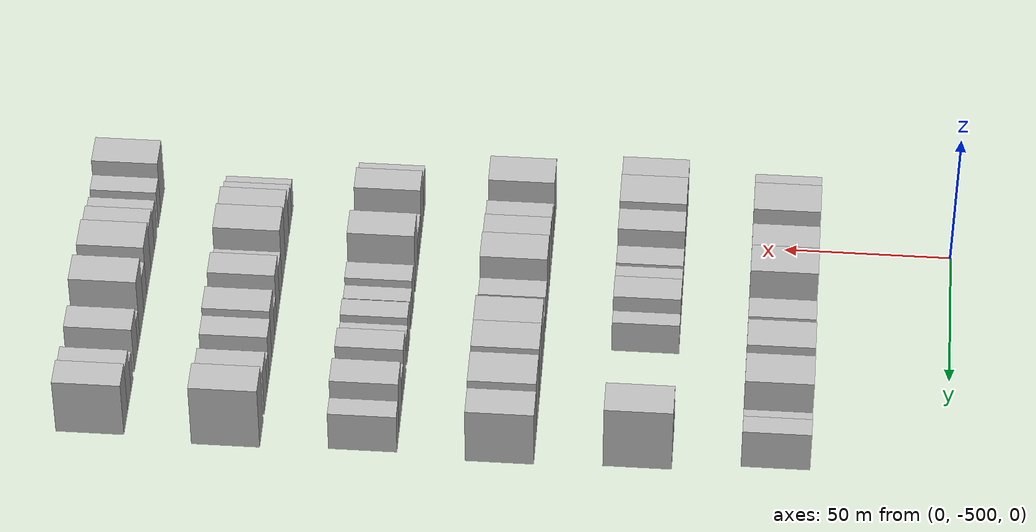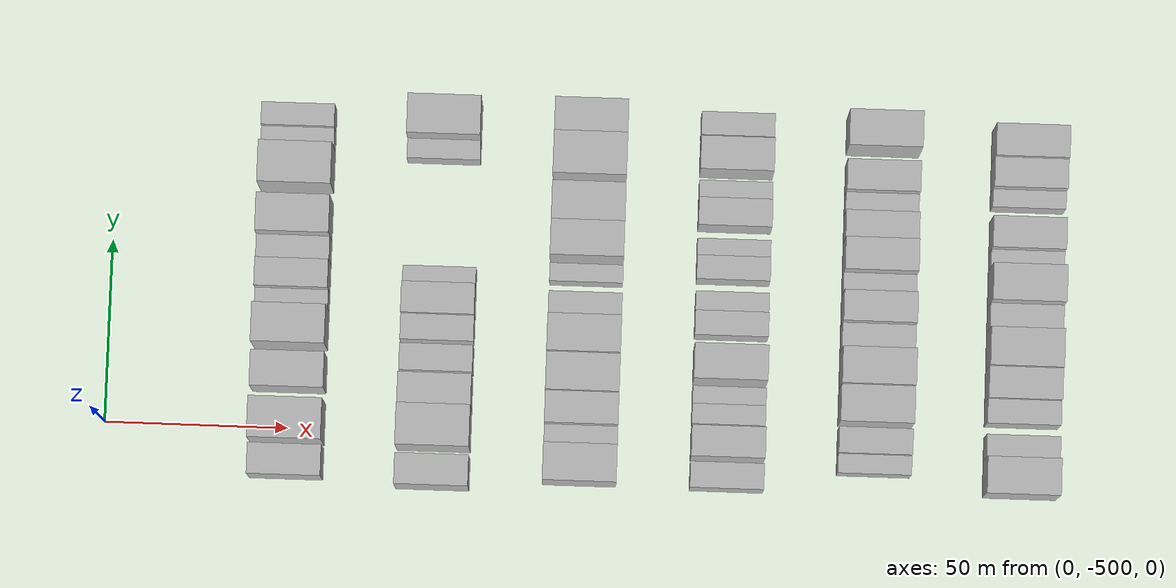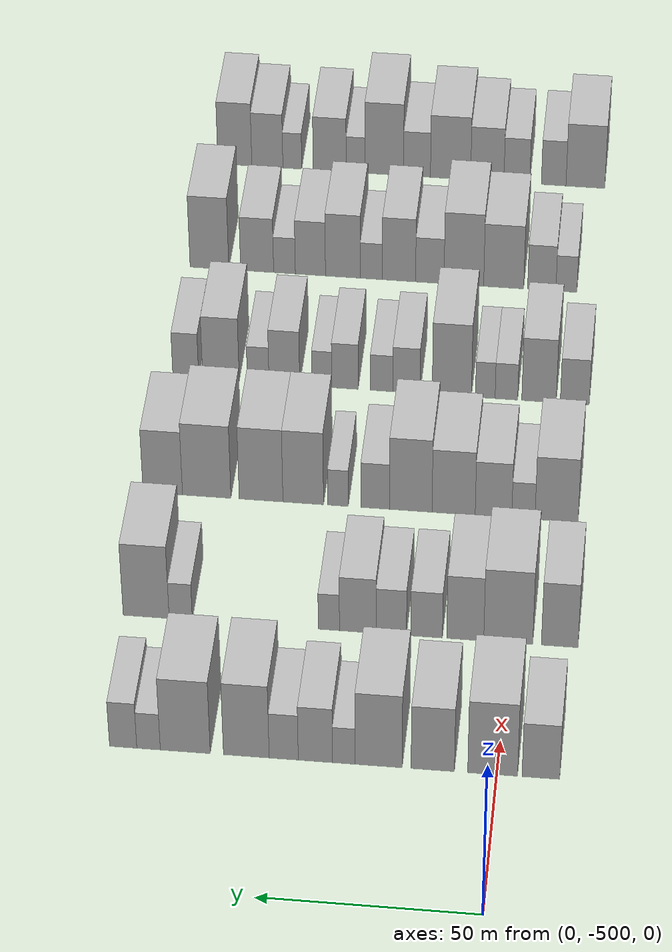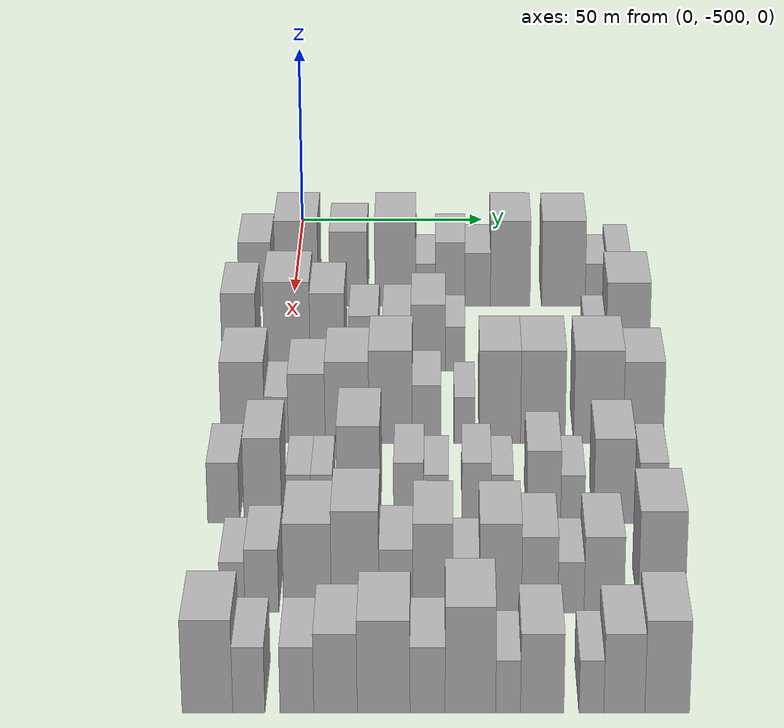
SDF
<sdf version="1.6">
 <world name="default">
  <model name="building_13">
   <static>1</static>
   <pose>50.0000 -509.7399 0 0.000000 0.000000 0.000000</pose>
   <link name="link">
    <pose>0 0 9.00 0 0 0</pose>
    <collision name="collision"><geometry><box><size>20.0000 8.4533 18.0000</size></box></geometry></collision>
    <visual name="visual">
     <cast_shadows>0</cast_shadows>
     <geometry><box><size>20.0000 8.4533 18.0000</size></box></geometry>
     <material>
      <script>
       <uri>model://HANNAS_wall/materials/scripts</uri>
       <uri>model://HANNAS_wall/materials/textures</uri>
       <name>vrc/HANNAS_wall</name>
      </script>
     </material>
    </visual>
   </link>
  </model>
  <model name="building_14">
   <static>1</static>
   <pose>50.0000 -498.9163 0 0.000000 0.000000 0.000000</pose>
   <link name="link">
    <pose>0 0 12.00 0 0 0</pose>
    <collision name="collision"><geometry><box><size>20.0000 11.1939 24.0000</size></box></geometry></collision>
    <visual name="visual">
     <cast_shadows>0</cast_shadows>
     <geometry><box><size>20.0000 11.1939 24.0000</size></box></geometry>
     <material>
      <script>
       <uri>model://HANNAS_wall/materials/scripts</uri>
       <uri>model://HANNAS_wall/materials/textures</uri>
       <name>vrc/HANNAS_wall</name>
      </script>
     </material>
    </visual>
   </link>
  </model>
  <model name="building_15">
   <static>1</static>
   <pose>50.0000 -485.4462 0 0.000000 0.000000 0.000000</pose>
   <link name="link">
    <pose>0 0 10.50 0 0 0</pose>
    <collision name="collision"><geometry><box><size>20.0000 9.7464 21.0000</size></box></geometry></collision>
    <visual name="visual">
     <cast_shadows>0</cast_shadows>
     <geometry><box><size>20.0000 9.7464 21.0000</size></box></geometry>
     <material>
      <script>
       <uri>model://HANNAS_wall/materials/scripts</uri>
       <uri>model://HANNAS_wall/materials/textures</uri>
       <name>vrc/HANNAS_wall</name>
      </script>
     </material>
    </visual>
   </link>
  </model>
  <model name="building_16">
   <static>1</static>
   <pose>50.0000 -473.2641 0 0.000000 0.000000 0.000000</pose>
   <link name="link">
    <pose>0 0 12.00 0 0 0</pose>
    <collision name="collision"><geometry><box><size>20.0000 10.6177 24.0000</size></box></geometry></collision>
    <visual name="visual">
     <cast_shadows>0</cast_shadows>
     <geometry><box><size>20.0000 10.6177 24.0000</size></box></geometry>
     <material>
      <script>
       <uri>model://HANNAS_wall/materials/scripts</uri>
       <uri>model://HANNAS_wall/materials/textures</uri>
       <name>vrc/HANNAS_wall</name>
      </script>
     </material>
    </visual>
   </link>
  </model>
  <model name="building_17">
   <static>1</static>
   <pose>50.0000 -465.4085 0 0.000000 0.000000 0.000000</pose>
   <link name="link">
    <pose>0 0 6.00 0 0 0</pose>
    <collision name="collision"><geometry><box><size>20.0000 5.0936 12.0000</size></box></geometry></collision>
    <visual name="visual">
     <cast_shadows>0</cast_shadows>
     <geometry><box><size>20.0000 5.0936 12.0000</size></box></geometry>
     <material>
      <script>
       <uri>model://HANNAS_wall/materials/scripts</uri>
       <uri>model://HANNAS_wall/materials/textures</uri>
       <name>vrc/HANNAS_wall</name>
      </script>
     </material>
    </visual>
   </link>
  </model>
  <model name="building_18">
   <static>1</static>
   <pose>50.0000 -458.9853 0 0.000000 0.000000 0.000000</pose>
   <link name="link">
    <pose>0 0 9.00 0 0 0</pose>
    <collision name="collision"><geometry><box><size>20.0000 7.7528 18.0000</size></box></geometry></collision>
    <visual name="visual">
     <cast_shadows>0</cast_shadows>
     <geometry><box><size>20.0000 7.7528 18.0000</size></box></geometry>
     <material>
      <script>
       <uri>model://HANNAS_wall/materials/scripts</uri>
       <uri>model://HANNAS_wall/materials/textures</uri>
       <name>vrc/HANNAS_wall</name>
      </script>
     </material>
    </visual>
   </link>
  </model>
  <model name="building_19">
   <static>1</static>
   <pose>50.0000 -451.8215 0 0.000000 0.000000 0.000000</pose>
   <link name="link">
    <pose>0 0 7.50 0 0 0</pose>
    <collision name="collision"><geometry><box><size>20.0000 6.5747 15.0000</size></box></geometry></collision>
    <visual name="visual">
     <cast_shadows>0</cast_shadows>
     <geometry><box><size>20.0000 6.5747 15.0000</size></box></geometry>
     <material>
      <script>
       <uri>model://HANNAS_wall/materials/scripts</uri>
       <uri>model://HANNAS_wall/materials/textures</uri>
       <name>vrc/HANNAS_wall</name>
      </script>
     </material>
    </visual>
   </link>
  </model>
  <model name="building_20">
   <static>1</static>
   <pose>50.0000 -443.3576 0 0.000000 0.000000 0.000000</pose>
   <link name="link">
    <pose>0 0 12.00 0 0 0</pose>
    <collision name="collision"><geometry><box><size>20.0000 10.3531 24.0000</size></box></geometry></collision>
    <visual name="visual">
     <cast_shadows>0</cast_shadows>
     <geometry><box><size>20.0000 10.3531 24.0000</size></box></geometry>
     <material>
      <script>
       <uri>model://HANNAS_wall/materials/scripts</uri>
       <uri>model://HANNAS_wall/materials/textures</uri>
       <name>vrc/HANNAS_wall</name>
      </script>
     </material>
    </visual>
   </link>
  </model>
  <model name="building_21">
   <static>1</static>
   <pose>50.0000 -429.5140 0 0.000000 0.000000 0.000000</pose>
   <link name="link">
    <pose>0 0 12.00 0 0 0</pose>
    <collision name="collision"><geometry><box><size>20.0000 11.3341 24.0000</size></box></geometry></collision>
    <visual name="visual">
     <cast_shadows>0</cast_shadows>
     <geometry><box><size>20.0000 11.3341 24.0000</size></box></geometry>
     <material>
      <script>
       <uri>model://HANNAS_wall/materials/scripts</uri>
       <uri>model://HANNAS_wall/materials/textures</uri>
       <name>vrc/HANNAS_wall</name>
      </script>
     </material>
    </visual>
   </link>
  </model>
  <model name="building_22">
   <static>1</static>
   <pose>50.0000 -421.1750 0 0.000000 0.000000 0.000000</pose>
   <link name="link">
    <pose>0 0 6.00 0 0 0</pose>
    <collision name="collision"><geometry><box><size>20.0000 5.3437 12.0000</size></box></geometry></collision>
    <visual name="visual">
     <cast_shadows>0</cast_shadows>
     <geometry><box><size>20.0000 5.3437 12.0000</size></box></geometry>
     <material>
      <script>
       <uri>model://HANNAS_wall/materials/scripts</uri>
       <uri>model://HANNAS_wall/materials/textures</uri>
       <name>vrc/HANNAS_wall</name>
      </script>
     </material>
    </visual>
   </link>
  </model>
  <model name="building_23">
   <static>1</static>
   <pose>50.0000 -415.4095 0 0.000000 0.000000 0.000000</pose>
   <link name="link">
    <pose>0 0 7.50 0 0 0</pose>
    <collision name="collision"><geometry><box><size>20.0000 6.1874 15.0000</size></box></geometry></collision>
    <visual name="visual">
     <cast_shadows>0</cast_shadows>
     <geometry><box><size>20.0000 6.1874 15.0000</size></box></geometry>
     <material>
      <script>
       <uri>model://HANNAS_wall/materials/scripts</uri>
       <uri>model://HANNAS_wall/materials/textures</uri>
       <name>vrc/HANNAS_wall</name>
      </script>
     </material>
    </visual>
   </link>
  </model>
  <model name="building_154">
   <static>1</static>
   <pose>90.0000 -511.3667 0 0.000000 0.000000 0.000000</pose>
   <link name="link">
    <pose>0 0 10.50 0 0 0</pose>
    <collision name="collision"><geometry><box><size>20.0000 8.4693 21.0000</size></box></geometry></collision>
    <visual name="visual">
     <cast_shadows>0</cast_shadows>
     <geometry><box><size>20.0000 8.4693 21.0000</size></box></geometry>
     <material>
      <script>
       <uri>model://HANNAS_wall/materials/scripts</uri>
       <uri>model://HANNAS_wall/materials/textures</uri>
       <name>vrc/HANNAS_wall</name>
      </script>
     </material>
    </visual>
   </link>
  </model>
  <model name="building_155">
   <static>1</static>
   <pose>90.0000 -499.4629 0 0.000000 0.000000 0.000000</pose>
   <link name="link">
    <pose>0 0 12.00 0 0 0</pose>
    <collision name="collision"><geometry><box><size>20.0000 11.3383 24.0000</size></box></geometry></collision>
    <visual name="visual">
     <cast_shadows>0</cast_shadows>
     <geometry><box><size>20.0000 11.3383 24.0000</size></box></geometry>
     <material>
      <script>
       <uri>model://HANNAS_wall/materials/scripts</uri>
       <uri>model://HANNAS_wall/materials/textures</uri>
       <name>vrc/HANNAS_wall</name>
      </script>
     </material>
    </visual>
   </link>
  </model>
  <model name="building_156">
   <static>1</static>
   <pose>90.0000 -489.5058 0 0.000000 0.000000 0.000000</pose>
   <link name="link">
    <pose>0 0 10.50 0 0 0</pose>
    <collision name="collision"><geometry><box><size>20.0000 8.5758 21.0000</size></box></geometry></collision>
    <visual name="visual">
     <cast_shadows>0</cast_shadows>
     <geometry><box><size>20.0000 8.5758 21.0000</size></box></geometry>
     <material>
      <script>
       <uri>model://HANNAS_wall/materials/scripts</uri>
       <uri>model://HANNAS_wall/materials/textures</uri>
       <name>vrc/HANNAS_wall</name>
      </script>
     </material>
    </visual>
   </link>
  </model>
  <model name="building_157">
   <static>1</static>
   <pose>90.0000 -480.5460 0 0.000000 0.000000 0.000000</pose>
   <link name="link">
    <pose>0 0 7.50 0 0 0</pose>
    <collision name="collision"><geometry><box><size>20.0000 7.3437 15.0000</size></box></geometry></collision>
    <visual name="visual">
     <cast_shadows>0</cast_shadows>
     <geometry><box><size>20.0000 7.3437 15.0000</size></box></geometry>
     <material>
      <script>
       <uri>model://HANNAS_wall/materials/scripts</uri>
       <uri>model://HANNAS_wall/materials/textures</uri>
       <name>vrc/HANNAS_wall</name>
      </script>
     </material>
    </visual>
   </link>
  </model>
  <model name="building_158">
   <static>1</static>
   <pose>90.0000 -472.3420 0 0.000000 0.000000 0.000000</pose>
   <link name="link">
    <pose>0 0 7.50 0 0 0</pose>
    <collision name="collision"><geometry><box><size>20.0000 7.0644 15.0000</size></box></geometry></collision>
    <visual name="visual">
     <cast_shadows>0</cast_shadows>
     <geometry><box><size>20.0000 7.0644 15.0000</size></box></geometry>
     <material>
      <script>
       <uri>model://HANNAS_wall/materials/scripts</uri>
       <uri>model://HANNAS_wall/materials/textures</uri>
       <name>vrc/HANNAS_wall</name>
      </script>
     </material>
    </visual>
   </link>
  </model>
  <model name="building_159">
   <static>1</static>
   <pose>90.0000 -464.5535 0 0.000000 0.000000 0.000000</pose>
   <link name="link">
    <pose>0 0 9.00 0 0 0</pose>
    <collision name="collision"><geometry><box><size>20.0000 8.5126 18.0000</size></box></geometry></collision>
    <visual name="visual">
     <cast_shadows>0</cast_shadows>
     <geometry><box><size>20.0000 8.5126 18.0000</size></box></geometry>
     <material>
      <script>
       <uri>model://HANNAS_wall/materials/scripts</uri>
       <uri>model://HANNAS_wall/materials/textures</uri>
       <name>vrc/HANNAS_wall</name>
      </script>
     </material>
    </visual>
   </link>
  </model>
  <model name="building_160">
   <static>1</static>
   <pose>90.0000 -457.8386 0 0.000000 0.000000 0.000000</pose>
   <link name="link">
    <pose>0 0 6.00 0 0 0</pose>
    <collision name="collision"><geometry><box><size>20.0000 4.9172 12.0000</size></box></geometry></collision>
    <visual name="visual">
     <cast_shadows>0</cast_shadows>
     <geometry><box><size>20.0000 4.9172 12.0000</size></box></geometry>
     <material>
      <script>
       <uri>model://HANNAS_wall/materials/scripts</uri>
       <uri>model://HANNAS_wall/materials/textures</uri>
       <name>vrc/HANNAS_wall</name>
      </script>
     </material>
    </visual>
   </link>
  </model>
  <model name="building_161">
   <static>1</static>
   <pose>90.0000 -423.2518 0 0.000000 0.000000 0.000000</pose>
   <link name="link">
    <pose>0 0 6.00 0 0 0</pose>
    <collision name="collision"><geometry><box><size>20.0000 5.4188 12.0000</size></box></geometry></collision>
    <visual name="visual">
     <cast_shadows>0</cast_shadows>
     <geometry><box><size>20.0000 5.4188 12.0000</size></box></geometry>
     <material>
      <script>
       <uri>model://HANNAS_wall/materials/scripts</uri>
       <uri>model://HANNAS_wall/materials/textures</uri>
       <name>vrc/HANNAS_wall</name>
      </script>
     </material>
    </visual>
   </link>
  </model>
  <model name="building_162">
   <static>1</static>
   <pose>90.0000 -415.1689 0 0.000000 0.000000 0.000000</pose>
   <link name="link">
    <pose>0 0 12.00 0 0 0</pose>
    <collision name="collision"><geometry><box><size>20.0000 10.7469 24.0000</size></box></geometry></collision>
    <visual name="visual">
     <cast_shadows>0</cast_shadows>
     <geometry><box><size>20.0000 10.7469 24.0000</size></box></geometry>
     <material>
      <script>
       <uri>model://HANNAS_wall/materials/scripts</uri>
       <uri>model://HANNAS_wall/materials/textures</uri>
       <name>vrc/HANNAS_wall</name>
      </script>
     </material>
    </visual>
   </link>
  </model>
  <model name="building_290">
   <static>1</static>
   <pose>130.0000 -508.0162 0 0.000000 0.000000 0.000000</pose>
   <link name="link">
    <pose>0 0 10.50 0 0 0</pose>
    <collision name="collision"><geometry><box><size>20.0000 10.2525 21.0000</size></box></geometry></collision>
    <visual name="visual">
     <cast_shadows>0</cast_shadows>
     <geometry><box><size>20.0000 10.2525 21.0000</size></box></geometry>
     <material>
      <script>
       <uri>model://HANNAS_wall/materials/scripts</uri>
       <uri>model://HANNAS_wall/materials/textures</uri>
       <name>vrc/HANNAS_wall</name>
      </script>
     </material>
    </visual>
   </link>
  </model>
  <model name="building_291">
   <static>1</static>
   <pose>130.0000 -500.1231 0 0.000000 0.000000 0.000000</pose>
   <link name="link">
    <pose>0 0 6.00 0 0 0</pose>
    <collision name="collision"><geometry><box><size>20.0000 5.5338 12.0000</size></box></geometry></collision>
    <visual name="visual">
     <cast_shadows>0</cast_shadows>
     <geometry><box><size>20.0000 5.5338 12.0000</size></box></geometry>
     <material>
      <script>
       <uri>model://HANNAS_wall/materials/scripts</uri>
       <uri>model://HANNAS_wall/materials/textures</uri>
       <name>vrc/HANNAS_wall</name>
      </script>
     </material>
    </visual>
   </link>
  </model>
  <model name="building_292">
   <static>1</static>
   <pose>130.0000 -492.9958 0 0.000000 0.000000 0.000000</pose>
   <link name="link">
    <pose>0 0 9.00 0 0 0</pose>
    <collision name="collision"><geometry><box><size>20.0000 8.7207 18.0000</size></box></geometry></collision>
    <visual name="visual">
     <cast_shadows>0</cast_shadows>
     <geometry><box><size>20.0000 8.7207 18.0000</size></box></geometry>
     <material>
      <script>
       <uri>model://HANNAS_wall/materials/scripts</uri>
       <uri>model://HANNAS_wall/materials/textures</uri>
       <name>vrc/HANNAS_wall</name>
      </script>
     </material>
    </visual>
   </link>
  </model>
  <model name="building_293">
   <static>1</static>
   <pose>130.0000 -483.4862 0 0.000000 0.000000 0.000000</pose>
   <link name="link">
    <pose>0 0 10.50 0 0 0</pose>
    <collision name="collision"><geometry><box><size>20.0000 10.2986 21.0000</size></box></geometry></collision>
    <visual name="visual">
     <cast_shadows>0</cast_shadows>
     <geometry><box><size>20.0000 10.2986 21.0000</size></box></geometry>
     <material>
      <script>
       <uri>model://HANNAS_wall/materials/scripts</uri>
       <uri>model://HANNAS_wall/materials/textures</uri>
       <name>vrc/HANNAS_wall</name>
      </script>
     </material>
    </visual>
   </link>
  </model>
  <model name="building_294">
   <static>1</static>
   <pose>130.0000 -473.2490 0 0.000000 0.000000 0.000000</pose>
   <link name="link">
    <pose>0 0 12.00 0 0 0</pose>
    <collision name="collision"><geometry><box><size>20.0000 10.1758 24.0000</size></box></geometry></collision>
    <visual name="visual">
     <cast_shadows>0</cast_shadows>
     <geometry><box><size>20.0000 10.1758 24.0000</size></box></geometry>
     <material>
      <script>
       <uri>model://HANNAS_wall/materials/scripts</uri>
       <uri>model://HANNAS_wall/materials/textures</uri>
       <name>vrc/HANNAS_wall</name>
      </script>
     </material>
    </visual>
   </link>
  </model>
  <model name="building_295">
   <static>1</static>
   <pose>130.0000 -464.7314 0 0.000000 0.000000 0.000000</pose>
   <link name="link">
    <pose>0 0 7.50 0 0 0</pose>
    <collision name="collision"><geometry><box><size>20.0000 6.8594 15.0000</size></box></geometry></collision>
    <visual name="visual">
     <cast_shadows>0</cast_shadows>
     <geometry><box><size>20.0000 6.8594 15.0000</size></box></geometry>
     <material>
      <script>
       <uri>model://HANNAS_wall/materials/scripts</uri>
       <uri>model://HANNAS_wall/materials/textures</uri>
       <name>vrc/HANNAS_wall</name>
      </script>
     </material>
    </visual>
   </link>
  </model>
  <model name="building_296">
   <static>1</static>
   <pose>130.0000 -455.8316 0 0.000000 0.000000 0.000000</pose>
   <link name="link">
    <pose>0 0 6.00 0 0 0</pose>
    <collision name="collision"><geometry><box><size>20.0000 4.9401 12.0000</size></box></geometry></collision>
    <visual name="visual">
     <cast_shadows>0</cast_shadows>
     <geometry><box><size>20.0000 4.9401 12.0000</size></box></geometry>
     <material>
      <script>
       <uri>model://HANNAS_wall/materials/scripts</uri>
       <uri>model://HANNAS_wall/materials/textures</uri>
       <name>vrc/HANNAS_wall</name>
      </script>
     </material>
    </visual>
   </link>
  </model>
  <model name="building_297">
   <static>1</static>
   <pose>130.0000 -447.4878 0 0.000000 0.000000 0.000000</pose>
   <link name="link">
    <pose>0 0 12.00 0 0 0</pose>
    <collision name="collision"><geometry><box><size>20.0000 9.7475 24.0000</size></box></geometry></collision>
    <visual name="visual">
     <cast_shadows>0</cast_shadows>
     <geometry><box><size>20.0000 9.7475 24.0000</size></box></geometry>
     <material>
      <script>
       <uri>model://HANNAS_wall/materials/scripts</uri>
       <uri>model://HANNAS_wall/materials/textures</uri>
       <name>vrc/HANNAS_wall</name>
      </script>
     </material>
    </visual>
   </link>
  </model>
  <model name="building_298">
   <static>1</static>
   <pose>130.0000 -437.3595 0 0.000000 0.000000 0.000000</pose>
   <link name="link">
    <pose>0 0 12.00 0 0 0</pose>
    <collision name="collision"><geometry><box><size>20.0000 10.5091 24.0000</size></box></geometry></collision>
    <visual name="visual">
     <cast_shadows>0</cast_shadows>
     <geometry><box><size>20.0000 10.5091 24.0000</size></box></geometry>
     <material>
      <script>
       <uri>model://HANNAS_wall/materials/scripts</uri>
       <uri>model://HANNAS_wall/materials/textures</uri>
       <name>vrc/HANNAS_wall</name>
      </script>
     </material>
    </visual>
   </link>
  </model>
  <model name="building_299">
   <static>1</static>
   <pose>130.0000 -424.2757 0 0.000000 0.000000 0.000000</pose>
   <link name="link">
    <pose>0 0 12.00 0 0 0</pose>
    <collision name="collision"><geometry><box><size>20.0000 11.6585 24.0000</size></box></geometry></collision>
    <visual name="visual">
     <cast_shadows>0</cast_shadows>
     <geometry><box><size>20.0000 11.6585 24.0000</size></box></geometry>
     <material>
      <script>
       <uri>model://HANNAS_wall/materials/scripts</uri>
       <uri>model://HANNAS_wall/materials/textures</uri>
       <name>vrc/HANNAS_wall</name>
      </script>
     </material>
    </visual>
   </link>
  </model>
  <model name="building_300">
   <static>1</static>
   <pose>130.0000 -413.6998 0 0.000000 0.000000 0.000000</pose>
   <link name="link">
    <pose>0 0 10.50 0 0 0</pose>
    <collision name="collision"><geometry><box><size>20.0000 9.4933 21.0000</size></box></geometry></collision>
    <visual name="visual">
     <cast_shadows>0</cast_shadows>
     <geometry><box><size>20.0000 9.4933 21.0000</size></box></geometry>
     <material>
      <script>
       <uri>model://HANNAS_wall/materials/scripts</uri>
       <uri>model://HANNAS_wall/materials/textures</uri>
       <name>vrc/HANNAS_wall</name>
      </script>
     </material>
    </visual>
   </link>
  </model>
  <model name="building_425">
   <static>1</static>
   <pose>170.0000 -509.8721 0 0.000000 0.000000 0.000000</pose>
   <link name="link">
    <pose>0 0 7.50 0 0 0</pose>
    <collision name="collision"><geometry><box><size>20.0000 7.0959 15.0000</size></box></geometry></collision>
    <visual name="visual">
     <cast_shadows>0</cast_shadows>
     <geometry><box><size>20.0000 7.0959 15.0000</size></box></geometry>
     <material>
      <script>
       <uri>model://HANNAS_wall/materials/scripts</uri>
       <uri>model://HANNAS_wall/materials/textures</uri>
       <name>vrc/HANNAS_wall</name>
      </script>
     </material>
    </visual>
   </link>
  </model>
  <model name="building_426">
   <static>1</static>
   <pose>170.0000 -501.1086 0 0.000000 0.000000 0.000000</pose>
   <link name="link">
    <pose>0 0 10.50 0 0 0</pose>
    <collision name="collision"><geometry><box><size>20.0000 8.4310 21.0000</size></box></geometry></collision>
    <visual name="visual">
     <cast_shadows>0</cast_shadows>
     <geometry><box><size>20.0000 8.4310 21.0000</size></box></geometry>
     <material>
      <script>
       <uri>model://HANNAS_wall/materials/scripts</uri>
       <uri>model://HANNAS_wall/materials/textures</uri>
       <name>vrc/HANNAS_wall</name>
      </script>
     </material>
    </visual>
   </link>
  </model>
  <model name="building_427">
   <static>1</static>
   <pose>170.0000 -493.1215 0 0.000000 0.000000 0.000000</pose>
   <link name="link">
    <pose>0 0 6.00 0 0 0</pose>
    <collision name="collision"><geometry><box><size>20.0000 5.5433 12.0000</size></box></geometry></collision>
    <visual name="visual">
     <cast_shadows>0</cast_shadows>
     <geometry><box><size>20.0000 5.5433 12.0000</size></box></geometry>
     <material>
      <script>
       <uri>model://HANNAS_wall/materials/scripts</uri>
       <uri>model://HANNAS_wall/materials/textures</uri>
       <name>vrc/HANNAS_wall</name>
      </script>
     </material>
    </visual>
   </link>
  </model>
  <model name="building_428">
   <static>1</static>
   <pose>170.0000 -487.9400 0 0.000000 0.000000 0.000000</pose>
   <link name="link">
    <pose>0 0 6.00 0 0 0</pose>
    <collision name="collision"><geometry><box><size>20.0000 4.8197 12.0000</size></box></geometry></collision>
    <visual name="visual">
     <cast_shadows>0</cast_shadows>
     <geometry><box><size>20.0000 4.8197 12.0000</size></box></geometry>
     <material>
      <script>
       <uri>model://HANNAS_wall/materials/scripts</uri>
       <uri>model://HANNAS_wall/materials/textures</uri>
       <name>vrc/HANNAS_wall</name>
      </script>
     </material>
    </visual>
   </link>
  </model>
  <model name="building_429">
   <static>1</static>
   <pose>170.0000 -479.7210 0 0.000000 0.000000 0.000000</pose>
   <link name="link">
    <pose>0 0 12.00 0 0 0</pose>
    <collision name="collision"><geometry><box><size>20.0000 9.6184 24.0000</size></box></geometry></collision>
    <visual name="visual">
     <cast_shadows>0</cast_shadows>
     <geometry><box><size>20.0000 9.6184 24.0000</size></box></geometry>
     <material>
      <script>
       <uri>model://HANNAS_wall/materials/scripts</uri>
       <uri>model://HANNAS_wall/materials/textures</uri>
       <name>vrc/HANNAS_wall</name>
      </script>
     </material>
    </visual>
   </link>
  </model>
  <model name="building_430">
   <static>1</static>
   <pose>170.0000 -468.5491 0 0.000000 0.000000 0.000000</pose>
   <link name="link">
    <pose>0 0 7.50 0 0 0</pose>
    <collision name="collision"><geometry><box><size>20.0000 6.7254 15.0000</size></box></geometry></collision>
    <visual name="visual">
     <cast_shadows>0</cast_shadows>
     <geometry><box><size>20.0000 6.7254 15.0000</size></box></geometry>
     <material>
      <script>
       <uri>model://HANNAS_wall/materials/scripts</uri>
       <uri>model://HANNAS_wall/materials/textures</uri>
       <name>vrc/HANNAS_wall</name>
      </script>
     </material>
    </visual>
   </link>
  </model>
  <model name="building_431">
   <static>1</static>
   <pose>170.0000 -462.4272 0 0.000000 0.000000 0.000000</pose>
   <link name="link">
    <pose>0 0 6.00 0 0 0</pose>
    <collision name="collision"><geometry><box><size>20.0000 5.5182 12.0000</size></box></geometry></collision>
    <visual name="visual">
     <cast_shadows>0</cast_shadows>
     <geometry><box><size>20.0000 5.5182 12.0000</size></box></geometry>
     <material>
      <script>
       <uri>model://HANNAS_wall/materials/scripts</uri>
       <uri>model://HANNAS_wall/materials/textures</uri>
       <name>vrc/HANNAS_wall</name>
      </script>
     </material>
    </visual>
   </link>
  </model>
  <model name="building_432">
   <static>1</static>
   <pose>170.0000 -453.4083 0 0.000000 0.000000 0.000000</pose>
   <link name="link">
    <pose>0 0 7.50 0 0 0</pose>
    <collision name="collision"><geometry><box><size>20.0000 6.5197 15.0000</size></box></geometry></collision>
    <visual name="visual">
     <cast_shadows>0</cast_shadows>
     <geometry><box><size>20.0000 6.5197 15.0000</size></box></geometry>
     <material>
      <script>
       <uri>model://HANNAS_wall/materials/scripts</uri>
       <uri>model://HANNAS_wall/materials/textures</uri>
       <name>vrc/HANNAS_wall</name>
      </script>
     </material>
    </visual>
   </link>
  </model>
  <model name="building_433">
   <static>1</static>
   <pose>170.0000 -447.6922 0 0.000000 0.000000 0.000000</pose>
   <link name="link">
    <pose>0 0 6.00 0 0 0</pose>
    <collision name="collision"><geometry><box><size>20.0000 4.9125 12.0000</size></box></geometry></collision>
    <visual name="visual">
     <cast_shadows>0</cast_shadows>
     <geometry><box><size>20.0000 4.9125 12.0000</size></box></geometry>
     <material>
      <script>
       <uri>model://HANNAS_wall/materials/scripts</uri>
       <uri>model://HANNAS_wall/materials/textures</uri>
       <name>vrc/HANNAS_wall</name>
      </script>
     </material>
    </visual>
   </link>
  </model>
  <model name="building_434">
   <static>1</static>
   <pose>170.0000 -438.4434 0 0.000000 0.000000 0.000000</pose>
   <link name="link">
    <pose>0 0 9.00 0 0 0</pose>
    <collision name="collision"><geometry><box><size>20.0000 7.5852 18.0000</size></box></geometry></collision>
    <visual name="visual">
     <cast_shadows>0</cast_shadows>
     <geometry><box><size>20.0000 7.5852 18.0000</size></box></geometry>
     <material>
      <script>
       <uri>model://HANNAS_wall/materials/scripts</uri>
       <uri>model://HANNAS_wall/materials/textures</uri>
       <name>vrc/HANNAS_wall</name>
      </script>
     </material>
    </visual>
   </link>
  </model>
  <model name="building_435">
   <static>1</static>
   <pose>170.0000 -431.9696 0 0.000000 0.000000 0.000000</pose>
   <link name="link">
    <pose>0 0 6.00 0 0 0</pose>
    <collision name="collision"><geometry><box><size>20.0000 5.3623 12.0000</size></box></geometry></collision>
    <visual name="visual">
     <cast_shadows>0</cast_shadows>
     <geometry><box><size>20.0000 5.3623 12.0000</size></box></geometry>
     <material>
      <script>
       <uri>model://HANNAS_wall/materials/scripts</uri>
       <uri>model://HANNAS_wall/materials/textures</uri>
       <name>vrc/HANNAS_wall</name>
      </script>
     </material>
    </visual>
   </link>
  </model>
  <model name="building_436">
   <static>1</static>
   <pose>170.0000 -422.7650 0 0.000000 0.000000 0.000000</pose>
   <link name="link">
    <pose>0 0 10.50 0 0 0</pose>
    <collision name="collision"><geometry><box><size>20.0000 9.0469 21.0000</size></box></geometry></collision>
    <visual name="visual">
     <cast_shadows>0</cast_shadows>
     <geometry><box><size>20.0000 9.0469 21.0000</size></box></geometry>
     <material>
      <script>
       <uri>model://HANNAS_wall/materials/scripts</uri>
       <uri>model://HANNAS_wall/materials/textures</uri>
       <name>vrc/HANNAS_wall</name>
      </script>
     </material>
    </visual>
   </link>
  </model>
  <model name="building_437">
   <static>1</static>
   <pose>170.0000 -414.0417 0 0.000000 0.000000 0.000000</pose>
   <link name="link">
    <pose>0 0 7.50 0 0 0</pose>
    <collision name="collision"><geometry><box><size>20.0000 6.3998 15.0000</size></box></geometry></collision>
    <visual name="visual">
     <cast_shadows>0</cast_shadows>
     <geometry><box><size>20.0000 6.3998 15.0000</size></box></geometry>
     <material>
      <script>
       <uri>model://HANNAS_wall/materials/scripts</uri>
       <uri>model://HANNAS_wall/materials/textures</uri>
       <name>vrc/HANNAS_wall</name>
      </script>
     </material>
    </visual>
   </link>
  </model>
  <model name="building_566">
   <static>1</static>
   <pose>210.0000 -505.2874 0 0.000000 0.000000 0.000000</pose>
   <link name="link">
    <pose>0 0 6.00 0 0 0</pose>
    <collision name="collision"><geometry><box><size>20.0000 5.2902 12.0000</size></box></geometry></collision>
    <visual name="visual">
     <cast_shadows>0</cast_shadows>
     <geometry><box><size>20.0000 5.2902 12.0000</size></box></geometry>
     <material>
      <script>
       <uri>model://HANNAS_wall/materials/scripts</uri>
       <uri>model://HANNAS_wall/materials/textures</uri>
       <name>vrc/HANNAS_wall</name>
      </script>
     </material>
    </visual>
   </link>
  </model>
  <model name="building_567">
   <static>1</static>
   <pose>210.0000 -499.0784 0 0.000000 0.000000 0.000000</pose>
   <link name="link">
    <pose>0 0 7.50 0 0 0</pose>
    <collision name="collision"><geometry><box><size>20.0000 7.1279 15.0000</size></box></geometry></collision>
    <visual name="visual">
     <cast_shadows>0</cast_shadows>
     <geometry><box><size>20.0000 7.1279 15.0000</size></box></geometry>
     <material>
      <script>
       <uri>model://HANNAS_wall/materials/scripts</uri>
       <uri>model://HANNAS_wall/materials/textures</uri>
       <name>vrc/HANNAS_wall</name>
      </script>
     </material>
    </visual>
   </link>
  </model>
  <model name="building_568">
   <static>1</static>
   <pose>210.0000 -489.4658 0 0.000000 0.000000 0.000000</pose>
   <link name="link">
    <pose>0 0 10.50 0 0 0</pose>
    <collision name="collision"><geometry><box><size>20.0000 10.0974 21.0000</size></box></geometry></collision>
    <visual name="visual">
     <cast_shadows>0</cast_shadows>
     <geometry><box><size>20.0000 10.0974 21.0000</size></box></geometry>
     <material>
      <script>
       <uri>model://HANNAS_wall/materials/scripts</uri>
       <uri>model://HANNAS_wall/materials/textures</uri>
       <name>vrc/HANNAS_wall</name>
      </script>
     </material>
    </visual>
   </link>
  </model>
  <model name="building_569">
   <static>1</static>
   <pose>210.0000 -479.4167 0 0.000000 0.000000 0.000000</pose>
   <link name="link">
    <pose>0 0 12.00 0 0 0</pose>
    <collision name="collision"><geometry><box><size>20.0000 10.0008 24.0000</size></box></geometry></collision>
    <visual name="visual">
     <cast_shadows>0</cast_shadows>
     <geometry><box><size>20.0000 10.0008 24.0000</size></box></geometry>
     <material>
      <script>
       <uri>model://HANNAS_wall/materials/scripts</uri>
       <uri>model://HANNAS_wall/materials/textures</uri>
       <name>vrc/HANNAS_wall</name>
      </script>
     </material>
    </visual>
   </link>
  </model>
  <model name="building_570">
   <static>1</static>
   <pose>210.0000 -470.8260 0 0.000000 0.000000 0.000000</pose>
   <link name="link">
    <pose>0 0 7.50 0 0 0</pose>
    <collision name="collision"><geometry><box><size>20.0000 7.1805 15.0000</size></box></geometry></collision>
    <visual name="visual">
     <cast_shadows>0</cast_shadows>
     <geometry><box><size>20.0000 7.1805 15.0000</size></box></geometry>
     <material>
      <script>
       <uri>model://HANNAS_wall/materials/scripts</uri>
       <uri>model://HANNAS_wall/materials/textures</uri>
       <name>vrc/HANNAS_wall</name>
      </script>
     </material>
    </visual>
   </link>
  </model>
  <model name="building_571">
   <static>1</static>
   <pose>210.0000 -463.0322 0 0.000000 0.000000 0.000000</pose>
   <link name="link">
    <pose>0 0 10.50 0 0 0</pose>
    <collision name="collision"><geometry><box><size>20.0000 8.4071 21.0000</size></box></geometry></collision>
    <visual name="visual">
     <cast_shadows>0</cast_shadows>
     <geometry><box><size>20.0000 8.4071 21.0000</size></box></geometry>
     <material>
      <script>
       <uri>model://HANNAS_wall/materials/scripts</uri>
       <uri>model://HANNAS_wall/materials/textures</uri>
       <name>vrc/HANNAS_wall</name>
      </script>
     </material>
    </visual>
   </link>
  </model>
  <model name="building_572">
   <static>1</static>
   <pose>210.0000 -456.0321 0 0.000000 0.000000 0.000000</pose>
   <link name="link">
    <pose>0 0 6.00 0 0 0</pose>
    <collision name="collision"><geometry><box><size>20.0000 5.5931 12.0000</size></box></geometry></collision>
    <visual name="visual">
     <cast_shadows>0</cast_shadows>
     <geometry><box><size>20.0000 5.5931 12.0000</size></box></geometry>
     <material>
      <script>
       <uri>model://HANNAS_wall/materials/scripts</uri>
       <uri>model://HANNAS_wall/materials/textures</uri>
       <name>vrc/HANNAS_wall</name>
      </script>
     </material>
    </visual>
   </link>
  </model>
  <model name="building_573">
   <static>1</static>
   <pose>210.0000 -448.8063 0 0.000000 0.000000 0.000000</pose>
   <link name="link">
    <pose>0 0 10.50 0 0 0</pose>
    <collision name="collision"><geometry><box><size>20.0000 8.8585 21.0000</size></box></geometry></collision>
    <visual name="visual">
     <cast_shadows>0</cast_shadows>
     <geometry><box><size>20.0000 8.8585 21.0000</size></box></geometry>
     <material>
      <script>
       <uri>model://HANNAS_wall/materials/scripts</uri>
       <uri>model://HANNAS_wall/materials/textures</uri>
       <name>vrc/HANNAS_wall</name>
      </script>
     </material>
    </visual>
   </link>
  </model>
  <model name="building_574">
   <static>1</static>
   <pose>210.0000 -440.5512 0 0.000000 0.000000 0.000000</pose>
   <link name="link">
    <pose>0 0 9.00 0 0 0</pose>
    <collision name="collision"><geometry><box><size>20.0000 7.6519 18.0000</size></box></geometry></collision>
    <visual name="visual">
     <cast_shadows>0</cast_shadows>
     <geometry><box><size>20.0000 7.6519 18.0000</size></box></geometry>
     <material>
      <script>
       <uri>model://HANNAS_wall/materials/scripts</uri>
       <uri>model://HANNAS_wall/materials/textures</uri>
       <name>vrc/HANNAS_wall</name>
      </script>
     </material>
    </visual>
   </link>
  </model>
  <model name="building_575">
   <static>1</static>
   <pose>210.0000 -433.9640 0 0.000000 0.000000 0.000000</pose>
   <link name="link">
    <pose>0 0 6.00 0 0 0</pose>
    <collision name="collision"><geometry><box><size>20.0000 5.5226 12.0000</size></box></geometry></collision>
    <visual name="visual">
     <cast_shadows>0</cast_shadows>
     <geometry><box><size>20.0000 5.5226 12.0000</size></box></geometry>
     <material>
      <script>
       <uri>model://HANNAS_wall/materials/scripts</uri>
       <uri>model://HANNAS_wall/materials/textures</uri>
       <name>vrc/HANNAS_wall</name>
      </script>
     </material>
    </visual>
   </link>
  </model>
  <model name="building_576">
   <static>1</static>
   <pose>210.0000 -427.0041 0 0.000000 0.000000 0.000000</pose>
   <link name="link">
    <pose>0 0 9.00 0 0 0</pose>
    <collision name="collision"><geometry><box><size>20.0000 8.3972 18.0000</size></box></geometry></collision>
    <visual name="visual">
     <cast_shadows>0</cast_shadows>
     <geometry><box><size>20.0000 8.3972 18.0000</size></box></geometry>
     <material>
      <script>
       <uri>model://HANNAS_wall/materials/scripts</uri>
       <uri>model://HANNAS_wall/materials/textures</uri>
       <name>vrc/HANNAS_wall</name>
      </script>
     </material>
    </visual>
   </link>
  </model>
  <model name="building_577">
   <static>1</static>
   <pose>210.0000 -414.8764 0 0.000000 0.000000 0.000000</pose>
   <link name="link">
    <pose>0 0 12.00 0 0 0</pose>
    <collision name="collision"><geometry><box><size>20.0000 9.8580 24.0000</size></box></geometry></collision>
    <visual name="visual">
     <cast_shadows>0</cast_shadows>
     <geometry><box><size>20.0000 9.8580 24.0000</size></box></geometry>
     <material>
      <script>
       <uri>model://HANNAS_wall/materials/scripts</uri>
       <uri>model://HANNAS_wall/materials/textures</uri>
       <name>vrc/HANNAS_wall</name>
      </script>
     </material>
    </visual>
   </link>
  </model>
  <model name="building_707">
   <static>1</static>
   <pose>250.0000 -507.6434 0 0.000000 0.000000 0.000000</pose>
   <link name="link">
    <pose>0 0 10.50 0 0 0</pose>
    <collision name="collision"><geometry><box><size>20.0000 10.0324 21.0000</size></box></geometry></collision>
    <visual name="visual">
     <cast_shadows>0</cast_shadows>
     <geometry><box><size>20.0000 10.0324 21.0000</size></box></geometry>
     <material>
      <script>
       <uri>model://HANNAS_wall/materials/scripts</uri>
       <uri>model://HANNAS_wall/materials/textures</uri>
       <name>vrc/HANNAS_wall</name>
      </script>
     </material>
    </visual>
   </link>
  </model>
  <model name="building_708">
   <static>1</static>
   <pose>250.0000 -499.4414 0 0.000000 0.000000 0.000000</pose>
   <link name="link">
    <pose>0 0 7.50 0 0 0</pose>
    <collision name="collision"><geometry><box><size>20.0000 6.3715 15.0000</size></box></geometry></collision>
    <visual name="visual">
     <cast_shadows>0</cast_shadows>
     <geometry><box><size>20.0000 6.3715 15.0000</size></box></geometry>
     <material>
      <script>
       <uri>model://HANNAS_wall/materials/scripts</uri>
       <uri>model://HANNAS_wall/materials/textures</uri>
       <name>vrc/HANNAS_wall</name>
      </script>
     </material>
    </visual>
   </link>
  </model>
  <model name="building_709">
   <static>1</static>
   <pose>250.0000 -489.9089 0 0.000000 0.000000 0.000000</pose>
   <link name="link">
    <pose>0 0 7.50 0 0 0</pose>
    <collision name="collision"><geometry><box><size>20.0000 6.6935 15.0000</size></box></geometry></collision>
    <visual name="visual">
     <cast_shadows>0</cast_shadows>
     <geometry><box><size>20.0000 6.6935 15.0000</size></box></geometry>
     <material>
      <script>
       <uri>model://HANNAS_wall/materials/scripts</uri>
       <uri>model://HANNAS_wall/materials/textures</uri>
       <name>vrc/HANNAS_wall</name>
      </script>
     </material>
    </visual>
   </link>
  </model>
  <model name="building_710">
   <static>1</static>
   <pose>250.0000 -482.2484 0 0.000000 0.000000 0.000000</pose>
   <link name="link">
    <pose>0 0 9.00 0 0 0</pose>
    <collision name="collision"><geometry><box><size>20.0000 8.6277 18.0000</size></box></geometry></collision>
    <visual name="visual">
     <cast_shadows>0</cast_shadows>
     <geometry><box><size>20.0000 8.6277 18.0000</size></box></geometry>
     <material>
      <script>
       <uri>model://HANNAS_wall/materials/scripts</uri>
       <uri>model://HANNAS_wall/materials/textures</uri>
       <name>vrc/HANNAS_wall</name>
      </script>
     </material>
    </visual>
   </link>
  </model>
  <model name="building_711">
   <static>1</static>
   <pose>250.0000 -472.7124 0 0.000000 0.000000 0.000000</pose>
   <link name="link">
    <pose>0 0 10.50 0 0 0</pose>
    <collision name="collision"><geometry><box><size>20.0000 10.4442 21.0000</size></box></geometry></collision>
    <visual name="visual">
     <cast_shadows>0</cast_shadows>
     <geometry><box><size>20.0000 10.4442 21.0000</size></box></geometry>
     <material>
      <script>
       <uri>model://HANNAS_wall/materials/scripts</uri>
       <uri>model://HANNAS_wall/materials/textures</uri>
       <name>vrc/HANNAS_wall</name>
      </script>
     </material>
    </visual>
   </link>
  </model>
  <model name="building_712">
   <static>1</static>
   <pose>250.0000 -464.0035 0 0.000000 0.000000 0.000000</pose>
   <link name="link">
    <pose>0 0 7.50 0 0 0</pose>
    <collision name="collision"><geometry><box><size>20.0000 6.9738 15.0000</size></box></geometry></collision>
    <visual name="visual">
     <cast_shadows>0</cast_shadows>
     <geometry><box><size>20.0000 6.9738 15.0000</size></box></geometry>
     <material>
      <script>
       <uri>model://HANNAS_wall/materials/scripts</uri>
       <uri>model://HANNAS_wall/materials/textures</uri>
       <name>vrc/HANNAS_wall</name>
      </script>
     </material>
    </visual>
   </link>
  </model>
  <model name="building_713">
   <static>1</static>
   <pose>250.0000 -455.4922 0 0.000000 0.000000 0.000000</pose>
   <link name="link">
    <pose>0 0 12.00 0 0 0</pose>
    <collision name="collision"><geometry><box><size>20.0000 10.0487 24.0000</size></box></geometry></collision>
    <visual name="visual">
     <cast_shadows>0</cast_shadows>
     <geometry><box><size>20.0000 10.0487 24.0000</size></box></geometry>
     <material>
      <script>
       <uri>model://HANNAS_wall/materials/scripts</uri>
       <uri>model://HANNAS_wall/materials/textures</uri>
       <name>vrc/HANNAS_wall</name>
      </script>
     </material>
    </visual>
   </link>
  </model>
  <model name="building_714">
   <static>1</static>
   <pose>250.0000 -448.0198 0 0.000000 0.000000 0.000000</pose>
   <link name="link">
    <pose>0 0 6.00 0 0 0</pose>
    <collision name="collision"><geometry><box><size>20.0000 4.8962 12.0000</size></box></geometry></collision>
    <visual name="visual">
     <cast_shadows>0</cast_shadows>
     <geometry><box><size>20.0000 4.8962 12.0000</size></box></geometry>
     <material>
      <script>
       <uri>model://HANNAS_wall/materials/scripts</uri>
       <uri>model://HANNAS_wall/materials/textures</uri>
       <name>vrc/HANNAS_wall</name>
      </script>
     </material>
    </visual>
   </link>
  </model>
  <model name="building_715">
   <static>1</static>
   <pose>250.0000 -441.2689 0 0.000000 0.000000 0.000000</pose>
   <link name="link">
    <pose>0 0 9.00 0 0 0</pose>
    <collision name="collision"><geometry><box><size>20.0000 8.6057 18.0000</size></box></geometry></collision>
    <visual name="visual">
     <cast_shadows>0</cast_shadows>
     <geometry><box><size>20.0000 8.6057 18.0000</size></box></geometry>
     <material>
      <script>
       <uri>model://HANNAS_wall/materials/scripts</uri>
       <uri>model://HANNAS_wall/materials/textures</uri>
       <name>vrc/HANNAS_wall</name>
      </script>
     </material>
    </visual>
   </link>
  </model>
  <model name="building_716">
   <static>1</static>
   <pose>250.0000 -431.5053 0 0.000000 0.000000 0.000000</pose>
   <link name="link">
    <pose>0 0 6.00 0 0 0</pose>
    <collision name="collision"><geometry><box><size>20.0000 4.9215 12.0000</size></box></geometry></collision>
    <visual name="visual">
     <cast_shadows>0</cast_shadows>
     <geometry><box><size>20.0000 4.9215 12.0000</size></box></geometry>
     <material>
      <script>
       <uri>model://HANNAS_wall/materials/scripts</uri>
       <uri>model://HANNAS_wall/materials/textures</uri>
       <name>vrc/HANNAS_wall</name>
      </script>
     </material>
    </visual>
   </link>
  </model>
  <model name="building_717">
   <static>1</static>
   <pose>250.0000 -424.9821 0 0.000000 0.000000 0.000000</pose>
   <link name="link">
    <pose>0 0 9.00 0 0 0</pose>
    <collision name="collision"><geometry><box><size>20.0000 8.1247 18.0000</size></box></geometry></collision>
    <visual name="visual">
     <cast_shadows>0</cast_shadows>
     <geometry><box><size>20.0000 8.1247 18.0000</size></box></geometry>
     <material>
      <script>
       <uri>model://HANNAS_wall/materials/scripts</uri>
       <uri>model://HANNAS_wall/materials/textures</uri>
       <name>vrc/HANNAS_wall</name>
      </script>
     </material>
    </visual>
   </link>
  </model>
  <model name="building_718">
   <static>1</static>
   <pose>250.0000 -416.4948 0 0.000000 0.000000 0.000000</pose>
   <link name="link">
    <pose>0 0 10.50 0 0 0</pose>
    <collision name="collision"><geometry><box><size>20.0000 8.8500 21.0000</size></box></geometry></collision>
    <visual name="visual">
     <cast_shadows>0</cast_shadows>
     <geometry><box><size>20.0000 8.8500 21.0000</size></box></geometry>
     <material>
      <script>
       <uri>model://HANNAS_wall/materials/scripts</uri>
       <uri>model://HANNAS_wall/materials/textures</uri>
       <name>vrc/HANNAS_wall</name>
      </script>
     </material>
    </visual>
   </link>
  </model>
 </world>
</sdf>
